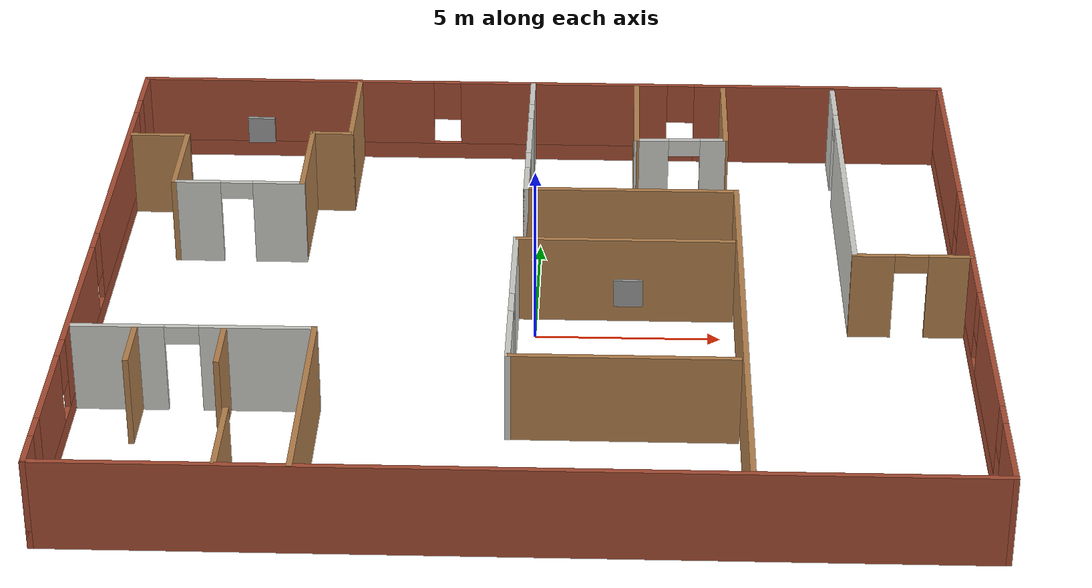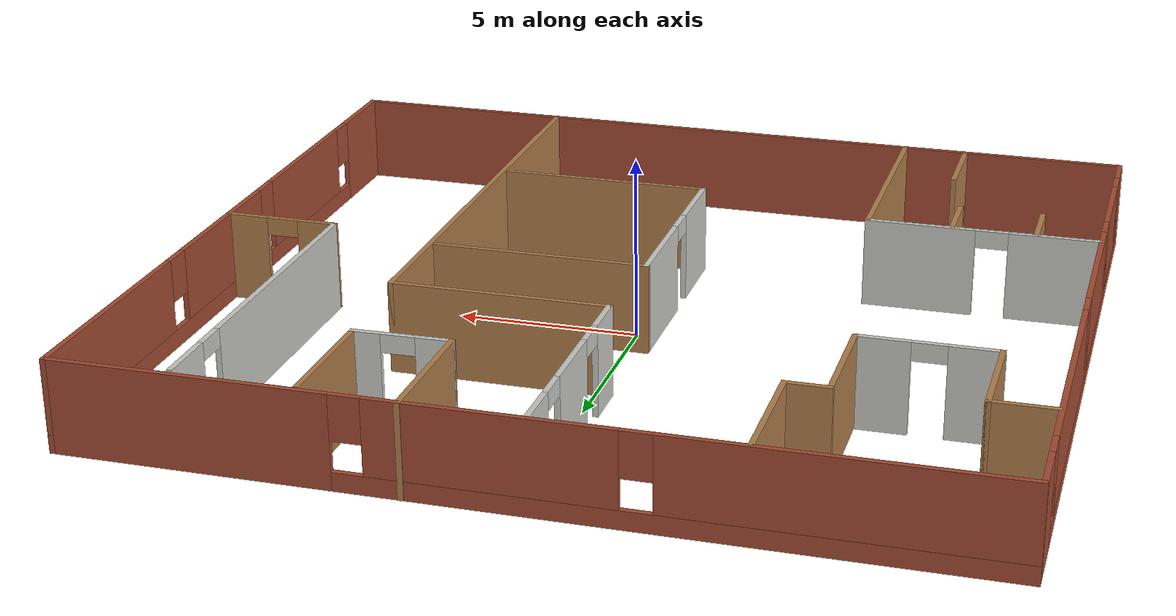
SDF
<?xml version='1.0'?>
<sdf version='1.7'>
  <world name='jetracer_plan'>
    <plugin
    filename="libignition-gazebo-physics-system.so"
    name="ignition::gazebo::systems::Physics">
</plugin>

<plugin
    filename="libignition-gazebo-user-commands-system.so"
    name="ignition::gazebo::systems::UserCommands">
</plugin>

<physics name="1ms" type="ignored">
    <max_step_size>0.001</max_step_size>
    <real_time_factor>1.0</real_time_factor>
</physics>
<plugin
    filename="libignition-gazebo-scene-broadcaster-system.so"
    name="ignition::gazebo::systems::SceneBroadcaster">
</plugin>

<!-- 3D scene -->
<plugin filename="MinimalScene" name="3D View">
  <gz-gui>
    <title>3D View</title>
    <property type="bool" key="showTitleBar">false</property>
    <property type="string" key="state">docked</property>
  </gz-gui>

  <engine>ogre2</engine>
  <scene>scene</scene>
  <ambient_light>0.4 0.4 0.4</ambient_light>
  <background_color>0.8 0.8 0.8</background_color>
  <camera_pose>-6 0 6 0 0.5 0</camera_pose>
  <camera_clip>
    <near>0.25</near>
    <far>25000</far>
  </camera_clip>
</plugin>
<plugin filename="GzSceneManager" name="Scene Manager">
  <gz-gui>
    <property key="resizable" type="bool">false</property>
    <property key="width" type="double">5</property>
    <property key="height" type="double">5</property>
    <property key="state" type="string">floating</property>
    <property key="showTitleBar" type="bool">false</property>
  </gz-gui>
</plugin>
<!-- World control -->
<plugin filename="WorldControl" name="World control">
    <ignition-gui>
        <title>World control</title>
        <property type="bool" key="showTitleBar">false</property>
        <property type="bool" key="resizable">false</property>
        <property type="double" key="height">72</property>
        <property type="double" key="width">121</property>
        <property type="double" key="z">1</property>

        <property type="string" key="state">floating</property>
        <anchors target="3D View">
        <line own="left" target="left"/>
        <line own="bottom" target="bottom"/>
        </anchors>
    </ignition-gui>

    <play_pause>true</play_pause>
    <step>true</step>
    <start_paused>true</start_paused>
    <service>/world/world_demo/control</service>
    <stats_topic>/world/world_demo/stats</stats_topic>
</plugin>

<!-- World statistics -->
<plugin filename="WorldStats" name="World stats">
    <ignition-gui>
        <title>World stats</title>
        <property type="bool" key="showTitleBar">false</property>
        <property type="bool" key="resizable">false</property>
        <property type="double" key="height">110</property>
        <property type="double" key="width">290</property>
        <property type="double" key="z">1</property>

        <property type="string" key="state">floating</property>
        <anchors target="3D View">
        <line own="right" target="right"/>
        <line own="bottom" target="bottom"/>
        </anchors>
    </ignition-gui>

    <sim_time>true</sim_time>
    <real_time>true</real_time>
    <real_time_factor>true</real_time_factor>
    <iterations>true</iterations>
    <topic>/world/world_demo/stats</topic>

</plugin>

  <model name='Walls'>
    <pose>-0.120811 0.11287 0 0 -0 0</pose>
    <link name='Wall_0'>
      <pose>-11.8 -0.006406 0 0 -0 -1.5708</pose>
      <visual name='Wall_0_Visual_0'>
        <pose>-9.71925 0 1.25 0 -0 0</pose>
        <geometry>
          <box>
            <size>1.5615 0.15 2.5</size>
          </box>
        </geometry>
        <material>
          <script>
            <uri>file://media/materials/scripts/gazebo.material</uri>
            <name>Gazebo/Bricks</name>
          </script>
          <ambient>1 1 1 1</ambient>
        </material>
        <meta>
          <layer>0</layer>
        </meta>
      </visual>
      <collision name='Wall_0_Collision_0'>
        <geometry>
          <box>
            <size>1.5615 0.15 2.5</size>
          </box>
        </geometry>
        <pose>-9.71925 0 1.25 0 -0 0</pose>
      </collision>
      <visual name='Wall_0_Visual_1'>
        <pose>0.78075 0 0.25 0 -0 0</pose>
        <geometry>
          <box>
            <size>19.4385 0.15 0.5</size>
          </box>
        </geometry>
        <material>
          <script>
            <uri>file://media/materials/scripts/gazebo.material</uri>
            <name>Gazebo/Bricks</name>
          </script>
          <ambient>1 1 1 1</ambient>
        </material>
        <meta>
          <layer>0</layer>
        </meta>
      </visual>
      <collision name='Wall_0_Collision_1'>
        <geometry>
          <box>
            <size>19.4385 0.15 0.5</size>
          </box>
        </geometry>
        <pose>0.78075 0 0.25 0 -0 0</pose>
      </collision>
      <visual name='Wall_0_Visual_2'>
        <pose>-4.47355 0 1.5 0 -0 0</pose>
        <geometry>
          <box>
            <size>7.32991 0.15 2</size>
          </box>
        </geometry>
        <material>
          <script>
            <uri>file://media/materials/scripts/gazebo.material</uri>
            <name>Gazebo/Bricks</name>
          </script>
          <ambient>1 1 1 1</ambient>
        </material>
        <meta>
          <layer>0</layer>
        </meta>
      </visual>
      <collision name='Wall_0_Collision_2'>
        <geometry>
          <box>
            <size>7.32991 0.15 2</size>
          </box>
        </geometry>
        <pose>-4.47355 0 1.5 0 -0 0</pose>
      </collision>
      <visual name='Wall_0_Visual_3'>
        <pose>2.40606 0 1.5 0 -0 0</pose>
        <geometry>
          <box>
            <size>4.82932 0.15 2</size>
          </box>
        </geometry>
        <material>
          <script>
            <uri>file://media/materials/scripts/gazebo.material</uri>
            <name>Gazebo/Bricks</name>
          </script>
          <ambient>1 1 1 1</ambient>
        </material>
        <meta>
          <layer>0</layer>
        </meta>
      </visual>
      <collision name='Wall_0_Collision_3'>
        <geometry>
          <box>
            <size>4.82932 0.15 2</size>
          </box>
        </geometry>
        <pose>2.40606 0 1.5 0 -0 0</pose>
      </collision>
      <visual name='Wall_0_Visual_4'>
        <pose>7.08238 0 1.5 0 -0 0</pose>
        <geometry>
          <box>
            <size>2.9233 0.15 2</size>
          </box>
        </geometry>
        <material>
          <script>
            <uri>file://media/materials/scripts/gazebo.material</uri>
            <name>Gazebo/Bricks</name>
          </script>
          <ambient>1 1 1 1</ambient>
        </material>
        <meta>
          <layer>0</layer>
        </meta>
      </visual>
      <collision name='Wall_0_Collision_4'>
        <geometry>
          <box>
            <size>2.9233 0.15 2</size>
          </box>
        </geometry>
        <pose>7.08238 0 1.5 0 -0 0</pose>
      </collision>
      <visual name='Wall_0_Visual_5'>
        <pose>9.92202 0 1.5 0 -0 0</pose>
        <geometry>
          <box>
            <size>1.15597 0.15 2</size>
          </box>
        </geometry>
        <material>
          <script>
            <uri>file://media/materials/scripts/gazebo.material</uri>
            <name>Gazebo/Bricks</name>
          </script>
          <ambient>1 1 1 1</ambient>
        </material>
        <meta>
          <layer>0</layer>
        </meta>
      </visual>
      <collision name='Wall_0_Collision_5'>
        <geometry>
          <box>
            <size>1.15597 0.15 2</size>
          </box>
        </geometry>
        <pose>9.92202 0 1.5 0 -0 0</pose>
      </collision>
      <visual name='Wall_0_Visual_6'>
        <pose>-8.5385 0 1.9 0 -0 0</pose>
        <geometry>
          <box>
            <size>0.8 0.15 1.2</size>
          </box>
        </geometry>
        <material>
          <script>
            <uri>file://media/materials/scripts/gazebo.material</uri>
            <name>Gazebo/Bricks</name>
          </script>
          <ambient>1 1 1 1</ambient>
        </material>
        <meta>
          <layer>0</layer>
        </meta>
      </visual>
      <collision name='Wall_0_Collision_6'>
        <geometry>
          <box>
            <size>0.8 0.15 1.2</size>
          </box>
        </geometry>
        <pose>-8.5385 0 1.9 0 -0 0</pose>
      </collision>
      <visual name='Wall_0_Visual_7'>
        <pose>-0.408595 0 1.9 0 -0 0</pose>
        <geometry>
          <box>
            <size>0.8 0.15 1.2</size>
          </box>
        </geometry>
        <material>
          <script>
            <uri>file://media/materials/scripts/gazebo.material</uri>
            <name>Gazebo/Bricks</name>
          </script>
          <ambient>1 1 1 1</ambient>
        </material>
        <meta>
          <layer>0</layer>
        </meta>
      </visual>
      <collision name='Wall_0_Collision_7'>
        <geometry>
          <box>
            <size>0.8 0.15 1.2</size>
          </box>
        </geometry>
        <pose>-0.408595 0 1.9 0 -0 0</pose>
      </collision>
      <visual name='Wall_0_Visual_8'>
        <pose>5.22073 0 1.9 0 -0 0</pose>
        <geometry>
          <box>
            <size>0.8 0.15 1.2</size>
          </box>
        </geometry>
        <material>
          <script>
            <uri>file://media/materials/scripts/gazebo.material</uri>
            <name>Gazebo/Bricks</name>
          </script>
          <ambient>1 1 1 1</ambient>
        </material>
        <meta>
          <layer>0</layer>
        </meta>
      </visual>
      <collision name='Wall_0_Collision_8'>
        <geometry>
          <box>
            <size>0.8 0.15 1.2</size>
          </box>
        </geometry>
        <pose>5.22073 0 1.9 0 -0 0</pose>
      </collision>
      <visual name='Wall_0_Visual_9'>
        <pose>8.94403 0 1.9 0 -0 0</pose>
        <geometry>
          <box>
            <size>0.8 0.15 1.2</size>
          </box>
        </geometry>
        <material>
          <script>
            <uri>file://media/materials/scripts/gazebo.material</uri>
            <name>Gazebo/Bricks</name>
          </script>
          <ambient>1 1 1 1</ambient>
        </material>
        <meta>
          <layer>0</layer>
        </meta>
      </visual>
      <collision name='Wall_0_Collision_9'>
        <geometry>
          <box>
            <size>0.8 0.15 1.2</size>
          </box>
        </geometry>
        <pose>8.94403 0 1.9 0 -0 0</pose>
      </collision>
    </link>
    <link name='Wall_1'>
      <collision name='Wall_1_Collision'>
        <geometry>
          <box>
            <size>23.75 0.15 2.5</size>
          </box>
        </geometry>
        <pose>0 0 1.25 0 -0 0</pose>
      </collision>
      <visual name='Wall_1_Visual'>
        <pose>0 0 1.25 0 -0 0</pose>
        <geometry>
          <box>
            <size>23.75 0.15 2.5</size>
          </box>
        </geometry>
        <material>
          <script>
            <uri>file://media/materials/scripts/gazebo.material</uri>
            <name>Gazebo/Bricks</name>
          </script>
          <ambient>1 1 1 1</ambient>
        </material>
        <meta>
          <layer>0</layer>
        </meta>
      </visual>
      <pose>0 -10.4314 0 0 -0 0</pose>
    </link>
    <link name='Wall_10'>
      <collision name='Wall_10_Collision'>
        <geometry>
          <box>
            <size>1.75 0.15 2.5</size>
          </box>
        </geometry>
        <pose>0 0 1.25 0 -0 0</pose>
      </collision>
      <visual name='Wall_10_Visual'>
        <pose>0 0 1.25 0 -0 0</pose>
        <geometry>
          <box>
            <size>1.75 0.15 2.5</size>
          </box>
        </geometry>
        <material>
          <script>
            <uri>file://media/materials/scripts/gazebo.material</uri>
            <name>Gazebo/Wood</name>
          </script>
          <ambient>1 1 1 1</ambient>
        </material>
        <meta>
          <layer>0</layer>
        </meta>
      </visual>
      <pose>-10.0459 -4.89784 0 0 -0 1.5708</pose>
    </link>
    <link name='Wall_12'>
      <pose>-0.254809 7.05825 0 0 -0 -1.5708</pose>
      <visual name='Wall_12_Visual_0'>
        <pose>-2.66527 0 1.25 0 -0 0</pose>
        <geometry>
          <box>
            <size>1.41945 0.15 2.5</size>
          </box>
        </geometry>
        <material>
          <script>
            <uri>file://media/materials/scripts/gazebo.material</uri>
            <name>Gazebo/CeilingTiled</name>
          </script>
          <ambient>1 1 1 1</ambient>
        </material>
        <meta>
          <layer>0</layer>
        </meta>
      </visual>
      <collision name='Wall_12_Collision_0'>
        <geometry>
          <box>
            <size>1.41945 0.15 2.5</size>
          </box>
        </geometry>
        <pose>-2.66527 0 1.25 0 -0 0</pose>
      </collision>
      <visual name='Wall_12_Visual_1'>
        <pose>0.036887 0 1.25 0 -0 0</pose>
        <geometry>
          <box>
            <size>2.18486 0.15 2.5</size>
          </box>
        </geometry>
        <material>
          <script>
            <uri>file://media/materials/scripts/gazebo.material</uri>
            <name>Gazebo/CeilingTiled</name>
          </script>
          <ambient>1 1 1 1</ambient>
        </material>
        <meta>
          <layer>0</layer>
        </meta>
      </visual>
      <collision name='Wall_12_Collision_1'>
        <geometry>
          <box>
            <size>2.18486 0.15 2.5</size>
          </box>
        </geometry>
        <pose>0.036887 0 1.25 0 -0 0</pose>
      </collision>
      <visual name='Wall_12_Visual_2'>
        <pose>2.70216 0 1.25 0 -0 0</pose>
        <geometry>
          <box>
            <size>1.34568 0.15 2.5</size>
          </box>
        </geometry>
        <material>
          <script>
            <uri>file://media/materials/scripts/gazebo.material</uri>
            <name>Gazebo/CeilingTiled</name>
          </script>
          <ambient>1 1 1 1</ambient>
        </material>
        <meta>
          <layer>0</layer>
        </meta>
      </visual>
      <collision name='Wall_12_Collision_2'>
        <geometry>
          <box>
            <size>1.34568 0.15 2.5</size>
          </box>
        </geometry>
        <pose>2.70216 0 1.25 0 -0 0</pose>
      </collision>
      <visual name='Wall_12_Visual_3'>
        <pose>-1.50555 0 2.25 0 -0 0</pose>
        <geometry>
          <box>
            <size>0.9 0.15 0.5</size>
          </box>
        </geometry>
        <material>
          <script>
            <uri>file://media/materials/scripts/gazebo.material</uri>
            <name>Gazebo/CeilingTiled</name>
          </script>
          <ambient>1 1 1 1</ambient>
        </material>
        <meta>
          <layer>0</layer>
        </meta>
      </visual>
      <collision name='Wall_12_Collision_3'>
        <geometry>
          <box>
            <size>0.9 0.15 0.5</size>
          </box>
        </geometry>
        <pose>-1.50555 0 2.25 0 -0 0</pose>
      </collision>
      <visual name='Wall_12_Visual_4'>
        <pose>1.57932 0 2.25 0 -0 0</pose>
        <geometry>
          <box>
            <size>0.9 0.15 0.5</size>
          </box>
        </geometry>
        <material>
          <script>
            <uri>file://media/materials/scripts/gazebo.material</uri>
            <name>Gazebo/CeilingTiled</name>
          </script>
          <ambient>1 1 1 1</ambient>
        </material>
        <meta>
          <layer>0</layer>
        </meta>
      </visual>
      <collision name='Wall_12_Collision_4'>
        <geometry>
          <box>
            <size>0.9 0.15 0.5</size>
          </box>
        </geometry>
        <pose>1.57932 0 2.25 0 -0 0</pose>
      </collision>
    </link>
    <link name='Wall_13'>
      <collision name='Wall_13_Collision'>
        <geometry>
          <box>
            <size>6 0.15 2.5</size>
          </box>
        </geometry>
        <pose>0 0 1.25 0 -0 0</pose>
      </collision>
      <visual name='Wall_13_Visual'>
        <pose>0 0 1.25 0 -0 0</pose>
        <geometry>
          <box>
            <size>6 0.15 2.5</size>
          </box>
        </geometry>
        <material>
          <script>
            <uri>file://media/materials/scripts/gazebo.material</uri>
            <name>Gazebo/Wood</name>
          </script>
          <ambient>1 1 1 1</ambient>
        </material>
        <meta>
          <layer>0</layer>
        </meta>
      </visual>
      <pose>2.67019 3.75825 0 0 -0 0</pose>
    </link>
    <link name='Wall_14'>
      <collision name='Wall_14_Collision'>
        <geometry>
          <box>
            <size>14.25 0.15 2.5</size>
          </box>
        </geometry>
        <pose>0 0 1.25 0 -0 0</pose>
      </collision>
      <visual name='Wall_14_Visual'>
        <pose>0 0 1.25 0 -0 0</pose>
        <geometry>
          <box>
            <size>14.25 0.15 2.5</size>
          </box>
        </geometry>
        <material>
          <script>
            <uri>file://media/materials/scripts/gazebo.material</uri>
            <name>Gazebo/Wood</name>
          </script>
          <ambient>1 1 1 1</ambient>
        </material>
        <meta>
          <layer>0</layer>
        </meta>
      </visual>
      <pose>5.59519 -3.29175 0 0 -0 -1.5708</pose>
    </link>
    <link name='Wall_16'>
      <collision name='Wall_16_Collision'>
        <geometry>
          <box>
            <size>6 0.15 2.5</size>
          </box>
        </geometry>
        <pose>0 0 1.25 0 -0 0</pose>
      </collision>
      <visual name='Wall_16_Visual'>
        <pose>0 0 1.25 0 -0 0</pose>
        <geometry>
          <box>
            <size>6 0.15 2.5</size>
          </box>
        </geometry>
        <material>
          <script>
            <uri>file://media/materials/scripts/gazebo.material</uri>
            <name>Gazebo/Wood</name>
          </script>
          <ambient>1 1 1 1</ambient>
        </material>
        <meta>
          <layer>0</layer>
        </meta>
      </visual>
      <pose>2.49222 0.884761 0 0 -0 3.14159</pose>
    </link>
    <link name='Wall_17'>
      <pose>-0.432782 -2.16524 0 0 -0 -1.5708</pose>
      <visual name='Wall_17_Visual_0'>
        <pose>-1.59353 0 1.25 0 -0 0</pose>
        <geometry>
          <box>
            <size>3.06293 0.15 2.5</size>
          </box>
        </geometry>
        <material>
          <script>
            <uri>file://media/materials/scripts/gazebo.material</uri>
            <name>Gazebo/CeilingTiled</name>
          </script>
          <ambient>1 1 1 1</ambient>
        </material>
        <meta>
          <layer>0</layer>
        </meta>
      </visual>
      <collision name='Wall_17_Collision_0'>
        <geometry>
          <box>
            <size>3.06293 0.15 2.5</size>
          </box>
        </geometry>
        <pose>-1.59353 0 1.25 0 -0 0</pose>
      </collision>
      <visual name='Wall_17_Visual_1'>
        <pose>1.98147 0 1.25 0 -0 0</pose>
        <geometry>
          <box>
            <size>2.28707 0.15 2.5</size>
          </box>
        </geometry>
        <material>
          <script>
            <uri>file://media/materials/scripts/gazebo.material</uri>
            <name>Gazebo/CeilingTiled</name>
          </script>
          <ambient>1 1 1 1</ambient>
        </material>
        <meta>
          <layer>0</layer>
        </meta>
      </visual>
      <collision name='Wall_17_Collision_1'>
        <geometry>
          <box>
            <size>2.28707 0.15 2.5</size>
          </box>
        </geometry>
        <pose>1.98147 0 1.25 0 -0 0</pose>
      </collision>
      <visual name='Wall_17_Visual_2'>
        <pose>0.387932 0 2.25 0 -0 0</pose>
        <geometry>
          <box>
            <size>0.9 0.15 0.5</size>
          </box>
        </geometry>
        <material>
          <script>
            <uri>file://media/materials/scripts/gazebo.material</uri>
            <name>Gazebo/CeilingTiled</name>
          </script>
          <ambient>1 1 1 1</ambient>
        </material>
        <meta>
          <layer>0</layer>
        </meta>
      </visual>
      <collision name='Wall_17_Collision_2'>
        <geometry>
          <box>
            <size>0.9 0.15 0.5</size>
          </box>
        </geometry>
        <pose>0.387932 0 2.25 0 -0 0</pose>
      </collision>
    </link>
    <link name='Wall_18'>
      <collision name='Wall_18_Collision'>
        <geometry>
          <box>
            <size>6 0.15 2.5</size>
          </box>
        </geometry>
        <pose>0 0 1.25 0 -0 0</pose>
      </collision>
      <visual name='Wall_18_Visual'>
        <pose>0 0 1.25 0 -0 0</pose>
        <geometry>
          <box>
            <size>6 0.15 2.5</size>
          </box>
        </geometry>
        <material>
          <script>
            <uri>file://media/materials/scripts/gazebo.material</uri>
            <name>Gazebo/Wood</name>
          </script>
          <ambient>1 1 1 1</ambient>
        </material>
        <meta>
          <layer>0</layer>
        </meta>
      </visual>
      <pose>2.49222 -5.21524 0 0 -0 0</pose>
    </link>
    <link name='Wall_2'>
      <pose>11.8 -0.006406 0 0 -0 1.5708</pose>
      <visual name='Wall_2_Visual_0'>
        <pose>-9.27157 0 1.25 0 -0 0</pose>
        <geometry>
          <box>
            <size>2.45686 0.15 2.5</size>
          </box>
        </geometry>
        <material>
          <script>
            <uri>file://media/materials/scripts/gazebo.material</uri>
            <name>Gazebo/Bricks</name>
          </script>
          <ambient>1 1 1 1</ambient>
        </material>
        <meta>
          <layer>0</layer>
        </meta>
      </visual>
      <collision name='Wall_2_Collision_0'>
        <geometry>
          <box>
            <size>2.45686 0.15 2.5</size>
          </box>
        </geometry>
        <pose>-9.27157 0 1.25 0 -0 0</pose>
      </collision>
      <visual name='Wall_2_Visual_1'>
        <pose>1.22843 0 0.25 0 -0 0</pose>
        <geometry>
          <box>
            <size>18.5431 0.15 0.5</size>
          </box>
        </geometry>
        <material>
          <script>
            <uri>file://media/materials/scripts/gazebo.material</uri>
            <name>Gazebo/Bricks</name>
          </script>
          <ambient>1 1 1 1</ambient>
        </material>
        <meta>
          <layer>0</layer>
        </meta>
      </visual>
      <collision name='Wall_2_Collision_1'>
        <geometry>
          <box>
            <size>18.5431 0.15 0.5</size>
          </box>
        </geometry>
        <pose>1.22843 0 0.25 0 -0 0</pose>
      </collision>
      <visual name='Wall_2_Visual_2'>
        <pose>-4.85239 0 1.5 0 -0 0</pose>
        <geometry>
          <box>
            <size>4.78149 0.15 2</size>
          </box>
        </geometry>
        <material>
          <script>
            <uri>file://media/materials/scripts/gazebo.material</uri>
            <name>Gazebo/Bricks</name>
          </script>
          <ambient>1 1 1 1</ambient>
        </material>
        <meta>
          <layer>0</layer>
        </meta>
      </visual>
      <collision name='Wall_2_Collision_2'>
        <geometry>
          <box>
            <size>4.78149 0.15 2</size>
          </box>
        </geometry>
        <pose>-4.85239 0 1.5 0 -0 0</pose>
      </collision>
      <visual name='Wall_2_Visual_3'>
        <pose>0.752553 0 1.5 0 -0 0</pose>
        <geometry>
          <box>
            <size>4.8284 0.15 2</size>
          </box>
        </geometry>
        <material>
          <script>
            <uri>file://media/materials/scripts/gazebo.material</uri>
            <name>Gazebo/Bricks</name>
          </script>
          <ambient>1 1 1 1</ambient>
        </material>
        <meta>
          <layer>0</layer>
        </meta>
      </visual>
      <collision name='Wall_2_Collision_3'>
        <geometry>
          <box>
            <size>4.8284 0.15 2</size>
          </box>
        </geometry>
        <pose>0.752553 0 1.5 0 -0 0</pose>
      </collision>
      <visual name='Wall_2_Visual_4'>
        <pose>7.23337 0 1.5 0 -0 0</pose>
        <geometry>
          <box>
            <size>6.53325 0.15 2</size>
          </box>
        </geometry>
        <material>
          <script>
            <uri>file://media/materials/scripts/gazebo.material</uri>
            <name>Gazebo/Bricks</name>
          </script>
          <ambient>1 1 1 1</ambient>
        </material>
        <meta>
          <layer>0</layer>
        </meta>
      </visual>
      <collision name='Wall_2_Collision_4'>
        <geometry>
          <box>
            <size>6.53325 0.15 2</size>
          </box>
        </geometry>
        <pose>7.23337 0 1.5 0 -0 0</pose>
      </collision>
      <visual name='Wall_2_Visual_5'>
        <pose>-7.64314 0 1.9 0 -0 0</pose>
        <geometry>
          <box>
            <size>0.8 0.15 1.2</size>
          </box>
        </geometry>
        <material>
          <script>
            <uri>file://media/materials/scripts/gazebo.material</uri>
            <name>Gazebo/Bricks</name>
          </script>
          <ambient>1 1 1 1</ambient>
        </material>
        <meta>
          <layer>0</layer>
        </meta>
      </visual>
      <collision name='Wall_2_Collision_5'>
        <geometry>
          <box>
            <size>0.8 0.15 1.2</size>
          </box>
        </geometry>
        <pose>-7.64314 0 1.9 0 -0 0</pose>
      </collision>
      <visual name='Wall_2_Visual_6'>
        <pose>-2.06164 0 1.9 0 -0 0</pose>
        <geometry>
          <box>
            <size>0.8 0.15 1.2</size>
          </box>
        </geometry>
        <material>
          <script>
            <uri>file://media/materials/scripts/gazebo.material</uri>
            <name>Gazebo/Bricks</name>
          </script>
          <ambient>1 1 1 1</ambient>
        </material>
        <meta>
          <layer>0</layer>
        </meta>
      </visual>
      <collision name='Wall_2_Collision_6'>
        <geometry>
          <box>
            <size>0.8 0.15 1.2</size>
          </box>
        </geometry>
        <pose>-2.06164 0 1.9 0 -0 0</pose>
      </collision>
      <visual name='Wall_2_Visual_7'>
        <pose>3.56675 0 1.9 0 -0 0</pose>
        <geometry>
          <box>
            <size>0.8 0.15 1.2</size>
          </box>
        </geometry>
        <material>
          <script>
            <uri>file://media/materials/scripts/gazebo.material</uri>
            <name>Gazebo/Bricks</name>
          </script>
          <ambient>1 1 1 1</ambient>
        </material>
        <meta>
          <layer>0</layer>
        </meta>
      </visual>
      <collision name='Wall_2_Collision_7'>
        <geometry>
          <box>
            <size>0.8 0.15 1.2</size>
          </box>
        </geometry>
        <pose>3.56675 0 1.9 0 -0 0</pose>
      </collision>
    </link>
    <link name='Wall_20'>
      <collision name='Wall_20_Collision'>
        <geometry>
          <box>
            <size>3.5 0.15 2.5</size>
          </box>
        </geometry>
        <pose>0 0 1.25 0 -0 0</pose>
      </collision>
      <visual name='Wall_20_Visual'>
        <pose>0 0 1.25 0 -0 0</pose>
        <geometry>
          <box>
            <size>3.5 0.15 2.5</size>
          </box>
        </geometry>
        <material>
          <script>
            <uri>file://media/materials/scripts/gazebo.material</uri>
            <name>Gazebo/Wood</name>
          </script>
          <ambient>1 1 1 1</ambient>
        </material>
        <meta>
          <layer>0</layer>
        </meta>
      </visual>
      <pose>-5.424 8.66314 0 0 -0 -1.5708</pose>
    </link>
    <link name='Wall_22'>
      <collision name='Wall_22_Collision'>
        <geometry>
          <box>
            <size>1.25 0.15 2.5</size>
          </box>
        </geometry>
        <pose>0 0 1.25 0 -0 0</pose>
      </collision>
      <visual name='Wall_22_Visual'>
        <pose>0 0 1.25 0 -0 0</pose>
        <geometry>
          <box>
            <size>1.25 0.15 2.5</size>
          </box>
        </geometry>
        <material>
          <script>
            <uri>file://media/materials/scripts/gazebo.material</uri>
            <name>Gazebo/Wood</name>
          </script>
          <ambient>1 1 1 1</ambient>
        </material>
        <meta>
          <layer>0</layer>
        </meta>
      </visual>
      <pose>-5.974 6.98814 0 0 -0 3.14159</pose>
    </link>
    <link name='Wall_23'>
      <collision name='Wall_23_Collision'>
        <geometry>
          <box>
            <size>3.25 0.15 2.5</size>
          </box>
        </geometry>
        <pose>0 0 1.25 0 -0 0</pose>
      </collision>
      <visual name='Wall_23_Visual'>
        <pose>0 0 1.25 0 -0 0</pose>
        <geometry>
          <box>
            <size>3.25 0.15 2.5</size>
          </box>
        </geometry>
        <material>
          <script>
            <uri>file://media/materials/scripts/gazebo.material</uri>
            <name>Gazebo/Wood</name>
          </script>
          <ambient>1 1 1 1</ambient>
        </material>
        <meta>
          <layer>0</layer>
        </meta>
      </visual>
      <pose>-6.524 5.43814 0 0 -0 -1.5708</pose>
    </link>
    <link name='Wall_24'>
      <pose>-8.324 3.88814 0 0 -0 3.14159</pose>
      <visual name='Wall_24_Visual_0'>
        <pose>-1.14284 0 1.25 0 -0 0</pose>
        <geometry>
          <box>
            <size>1.46433 0.15 2.5</size>
          </box>
        </geometry>
        <material>
          <script>
            <uri>file://media/materials/scripts/gazebo.material</uri>
            <name>Gazebo/CeilingTiled</name>
          </script>
          <ambient>1 1 1 1</ambient>
        </material>
        <meta>
          <layer>0</layer>
        </meta>
      </visual>
      <collision name='Wall_24_Collision_0'>
        <geometry>
          <box>
            <size>1.46433 0.15 2.5</size>
          </box>
        </geometry>
        <pose>-1.14284 0 1.25 0 -0 0</pose>
      </collision>
      <visual name='Wall_24_Visual_1'>
        <pose>1.18216 0 1.25 0 -0 0</pose>
        <geometry>
          <box>
            <size>1.38567 0.15 2.5</size>
          </box>
        </geometry>
        <material>
          <script>
            <uri>file://media/materials/scripts/gazebo.material</uri>
            <name>Gazebo/CeilingTiled</name>
          </script>
          <ambient>1 1 1 1</ambient>
        </material>
        <meta>
          <layer>0</layer>
        </meta>
      </visual>
      <collision name='Wall_24_Collision_1'>
        <geometry>
          <box>
            <size>1.38567 0.15 2.5</size>
          </box>
        </geometry>
        <pose>1.18216 0 1.25 0 -0 0</pose>
      </collision>
      <visual name='Wall_24_Visual_2'>
        <pose>0.039327 0 2.25 0 -0 0</pose>
        <geometry>
          <box>
            <size>0.9 0.15 0.5</size>
          </box>
        </geometry>
        <material>
          <script>
            <uri>file://media/materials/scripts/gazebo.material</uri>
            <name>Gazebo/CeilingTiled</name>
          </script>
          <ambient>1 1 1 1</ambient>
        </material>
        <meta>
          <layer>0</layer>
        </meta>
      </visual>
      <collision name='Wall_24_Collision_2'>
        <geometry>
          <box>
            <size>0.9 0.15 0.5</size>
          </box>
        </geometry>
        <pose>0.039327 0 2.25 0 -0 0</pose>
      </collision>
    </link>
    <link name='Wall_25'>
      <collision name='Wall_25_Collision'>
        <geometry>
          <box>
            <size>3 0.15 2.5</size>
          </box>
        </geometry>
        <pose>0 0 1.25 0 -0 0</pose>
      </collision>
      <visual name='Wall_25_Visual'>
        <pose>0 0 1.25 0 -0 0</pose>
        <geometry>
          <box>
            <size>3 0.15 2.5</size>
          </box>
        </geometry>
        <material>
          <script>
            <uri>file://media/materials/scripts/gazebo.material</uri>
            <name>Gazebo/Wood</name>
          </script>
          <ambient>1 1 1 1</ambient>
        </material>
        <meta>
          <layer>0</layer>
        </meta>
      </visual>
      <pose>-10.124 5.31314 0 0 -0 1.5708</pose>
    </link>
    <link name='Wall_26'>
      <collision name='Wall_26_Collision'>
        <geometry>
          <box>
            <size>1.75 0.15 2.5</size>
          </box>
        </geometry>
        <pose>0 0 1.25 0 -0 0</pose>
      </collision>
      <visual name='Wall_26_Visual'>
        <pose>0 0 1.25 0 -0 0</pose>
        <geometry>
          <box>
            <size>1.75 0.15 2.5</size>
          </box>
        </geometry>
        <material>
          <script>
            <uri>file://media/materials/scripts/gazebo.material</uri>
            <name>Gazebo/Wood</name>
          </script>
          <ambient>1 1 1 1</ambient>
        </material>
        <meta>
          <layer>0</layer>
        </meta>
      </visual>
      <pose>-10.924 6.73814 0 0 -0 3.14159</pose>
    </link>
    <link name='Wall_28'>
      <collision name='Wall_28_Collision'>
        <geometry>
          <box>
            <size>2.5 0.15 2.5</size>
          </box>
        </geometry>
        <pose>0 0 1.25 0 -0 0</pose>
      </collision>
      <visual name='Wall_28_Visual'>
        <pose>0 0 1.25 0 -0 0</pose>
        <geometry>
          <box>
            <size>2.5 0.15 2.5</size>
          </box>
        </geometry>
        <material>
          <script>
            <uri>file://media/materials/scripts/gazebo.material</uri>
            <name>Gazebo/Wood</name>
          </script>
          <ambient>1 1 1 1</ambient>
        </material>
        <meta>
          <layer>0</layer>
        </meta>
      </visual>
      <pose>-7.24314 -9.15893 0 0 -0 -1.5708</pose>
    </link>
    <link name='Wall_3'>
      <pose>0 10.4186 0 0 -0 3.14159</pose>
      <visual name='Wall_3_Visual_0'>
        <pose>-8.20375 0 1.25 0 -0 0</pose>
        <geometry>
          <box>
            <size>7.3425 0.15 2.5</size>
          </box>
        </geometry>
        <material>
          <script>
            <uri>file://media/materials/scripts/gazebo.material</uri>
            <name>Gazebo/Bricks</name>
          </script>
          <ambient>1 1 1 1</ambient>
        </material>
        <meta>
          <layer>0</layer>
        </meta>
      </visual>
      <collision name='Wall_3_Collision_0'>
        <geometry>
          <box>
            <size>7.3425 0.15 2.5</size>
          </box>
        </geometry>
        <pose>-8.20375 0 1.25 0 -0 0</pose>
      </collision>
      <visual name='Wall_3_Visual_1'>
        <pose>3.67125 0 0.25 0 -0 0</pose>
        <geometry>
          <box>
            <size>16.4075 0.15 0.5</size>
          </box>
        </geometry>
        <material>
          <script>
            <uri>file://media/materials/scripts/gazebo.material</uri>
            <name>Gazebo/Bricks</name>
          </script>
          <ambient>1 1 1 1</ambient>
        </material>
        <meta>
          <layer>0</layer>
        </meta>
      </visual>
      <collision name='Wall_3_Collision_1'>
        <geometry>
          <box>
            <size>16.4075 0.15 0.5</size>
          </box>
        </geometry>
        <pose>3.67125 0 0.25 0 -0 0</pose>
      </collision>
      <visual name='Wall_3_Visual_2'>
        <pose>-0.65384 0 1.5 0 -0 0</pose>
        <geometry>
          <box>
            <size>6.15732 0.15 2</size>
          </box>
        </geometry>
        <material>
          <script>
            <uri>file://media/materials/scripts/gazebo.material</uri>
            <name>Gazebo/Bricks</name>
          </script>
          <ambient>1 1 1 1</ambient>
        </material>
        <meta>
          <layer>0</layer>
        </meta>
      </visual>
      <collision name='Wall_3_Collision_2'>
        <geometry>
          <box>
            <size>6.15732 0.15 2</size>
          </box>
        </geometry>
        <pose>-0.65384 0 1.5 0 -0 0</pose>
      </collision>
      <visual name='Wall_3_Visual_3'>
        <pose>7.54991 0 1.5 0 -0 0</pose>
        <geometry>
          <box>
            <size>8.65018 0.15 2</size>
          </box>
        </geometry>
        <material>
          <script>
            <uri>file://media/materials/scripts/gazebo.material</uri>
            <name>Gazebo/Bricks</name>
          </script>
          <ambient>1 1 1 1</ambient>
        </material>
        <meta>
          <layer>0</layer>
        </meta>
      </visual>
      <collision name='Wall_3_Collision_3'>
        <geometry>
          <box>
            <size>8.65018 0.15 2</size>
          </box>
        </geometry>
        <pose>7.54991 0 1.5 0 -0 0</pose>
      </collision>
      <visual name='Wall_3_Visual_4'>
        <pose>-4.1325 0 1.9 0 -0 0</pose>
        <geometry>
          <box>
            <size>0.8 0.15 1.2</size>
          </box>
        </geometry>
        <material>
          <script>
            <uri>file://media/materials/scripts/gazebo.material</uri>
            <name>Gazebo/Bricks</name>
          </script>
          <ambient>1 1 1 1</ambient>
        </material>
        <meta>
          <layer>0</layer>
        </meta>
      </visual>
      <collision name='Wall_3_Collision_4'>
        <geometry>
          <box>
            <size>0.8 0.15 1.2</size>
          </box>
        </geometry>
        <pose>-4.1325 0 1.9 0 -0 0</pose>
      </collision>
      <visual name='Wall_3_Visual_5'>
        <pose>2.82482 0 1.9 0 -0 0</pose>
        <geometry>
          <box>
            <size>0.8 0.15 1.2</size>
          </box>
        </geometry>
        <material>
          <script>
            <uri>file://media/materials/scripts/gazebo.material</uri>
            <name>Gazebo/Bricks</name>
          </script>
          <ambient>1 1 1 1</ambient>
        </material>
        <meta>
          <layer>0</layer>
        </meta>
      </visual>
      <collision name='Wall_3_Collision_5'>
        <geometry>
          <box>
            <size>0.8 0.15 1.2</size>
          </box>
        </geometry>
        <pose>2.82482 0 1.9 0 -0 0</pose>
      </collision>
    </link>
    <link name='Wall_30'>
      <collision name='Wall_30_Collision'>
        <geometry>
          <box>
            <size>3.75 0.15 2.5</size>
          </box>
        </geometry>
        <pose>0 0 1.25 0 -0 0</pose>
      </collision>
      <visual name='Wall_30_Visual'>
        <pose>0 0 1.25 0 -0 0</pose>
        <geometry>
          <box>
            <size>3.75 0.15 2.5</size>
          </box>
        </geometry>
        <material>
          <script>
            <uri>file://media/materials/scripts/gazebo.material</uri>
            <name>Gazebo/Wood</name>
          </script>
          <ambient>1 1 1 1</ambient>
        </material>
        <meta>
          <layer>0</layer>
        </meta>
      </visual>
      <pose>2.81911 8.63141 0 0 -0 -1.5708</pose>
    </link>
    <link name='Wall_31'>
      <pose>4.09949 6.86083 0 0 -0 0.022974</pose>
      <visual name='Wall_31_Visual_0'>
        <pose>-0.858041 0 1.25 0 -0 0</pose>
        <geometry>
          <box>
            <size>0.995366 0.15 2.5</size>
          </box>
        </geometry>
        <material>
          <script>
            <uri>file://media/materials/scripts/gazebo.material</uri>
            <name>Gazebo/CeilingTiled</name>
          </script>
          <ambient>1 1 1 1</ambient>
        </material>
        <meta>
          <layer>0</layer>
        </meta>
      </visual>
      <collision name='Wall_31_Collision_0'>
        <geometry>
          <box>
            <size>0.995366 0.15 2.5</size>
          </box>
        </geometry>
        <pose>-0.858041 0 1.25 0 -0 0</pose>
      </collision>
      <visual name='Wall_31_Visual_1'>
        <pose>0.947683 0 1.25 0 -0 0</pose>
        <geometry>
          <box>
            <size>0.816082 0.15 2.5</size>
          </box>
        </geometry>
        <material>
          <script>
            <uri>file://media/materials/scripts/gazebo.material</uri>
            <name>Gazebo/CeilingTiled</name>
          </script>
          <ambient>1 1 1 1</ambient>
        </material>
        <meta>
          <layer>0</layer>
        </meta>
      </visual>
      <collision name='Wall_31_Collision_1'>
        <geometry>
          <box>
            <size>0.816082 0.15 2.5</size>
          </box>
        </geometry>
        <pose>0.947683 0 1.25 0 -0 0</pose>
      </collision>
      <visual name='Wall_31_Visual_2'>
        <pose>0.089642 0 2.25 0 -0 0</pose>
        <geometry>
          <box>
            <size>0.9 0.15 0.5</size>
          </box>
        </geometry>
        <material>
          <script>
            <uri>file://media/materials/scripts/gazebo.material</uri>
            <name>Gazebo/CeilingTiled</name>
          </script>
          <ambient>1 1 1 1</ambient>
        </material>
        <meta>
          <layer>0</layer>
        </meta>
      </visual>
      <collision name='Wall_31_Collision_2'>
        <geometry>
          <box>
            <size>0.9 0.15 0.5</size>
          </box>
        </geometry>
        <pose>0.089642 0 2.25 0 -0 0</pose>
      </collision>
    </link>
    <link name='Wall_32'>
      <collision name='Wall_32_Collision'>
        <geometry>
          <box>
            <size>3.5 0.15 2.5</size>
          </box>
        </geometry>
        <pose>0 0 1.25 0 -0 0</pose>
      </collision>
      <visual name='Wall_32_Visual'>
        <pose>0 0 1.25 0 -0 0</pose>
        <geometry>
          <box>
            <size>3.5 0.15 2.5</size>
          </box>
        </geometry>
        <material>
          <script>
            <uri>file://media/materials/scripts/gazebo.material</uri>
            <name>Gazebo/Wood</name>
          </script>
          <ambient>1 1 1 1</ambient>
        </material>
        <meta>
          <layer>0</layer>
        </meta>
      </visual>
      <pose>5.37988 8.56525 0 0 -0 1.5708</pose>
    </link>
    <link name='Wall_34'>
      <pose>10.2063 0.230365 0 0 -0 3.14159</pose>
      <visual name='Wall_34_Visual_0'>
        <pose>-1.02534 0 1.25 0 -0 0</pose>
        <geometry>
          <box>
            <size>1.19932 0.15 2.5</size>
          </box>
        </geometry>
        <material>
          <script>
            <uri>file://media/materials/scripts/gazebo.material</uri>
            <name>Gazebo/Wood</name>
          </script>
          <ambient>1 1 1 1</ambient>
        </material>
        <meta>
          <layer>0</layer>
        </meta>
      </visual>
      <collision name='Wall_34_Collision_0'>
        <geometry>
          <box>
            <size>1.19932 0.15 2.5</size>
          </box>
        </geometry>
        <pose>-1.02534 0 1.25 0 -0 0</pose>
      </collision>
      <visual name='Wall_34_Visual_1'>
        <pose>1.04966 0 1.25 0 -0 0</pose>
        <geometry>
          <box>
            <size>1.15068 0.15 2.5</size>
          </box>
        </geometry>
        <material>
          <script>
            <uri>file://media/materials/scripts/gazebo.material</uri>
            <name>Gazebo/Wood</name>
          </script>
          <ambient>1 1 1 1</ambient>
        </material>
        <meta>
          <layer>0</layer>
        </meta>
      </visual>
      <collision name='Wall_34_Collision_1'>
        <geometry>
          <box>
            <size>1.15068 0.15 2.5</size>
          </box>
        </geometry>
        <pose>1.04966 0 1.25 0 -0 0</pose>
      </collision>
      <visual name='Wall_34_Visual_2'>
        <pose>0.02432 0 2.25 0 -0 0</pose>
        <geometry>
          <box>
            <size>0.9 0.15 0.5</size>
          </box>
        </geometry>
        <material>
          <script>
            <uri>file://media/materials/scripts/gazebo.material</uri>
            <name>Gazebo/Wood</name>
          </script>
          <ambient>1 1 1 1</ambient>
        </material>
        <meta>
          <layer>0</layer>
        </meta>
      </visual>
      <collision name='Wall_34_Collision_2'>
        <geometry>
          <box>
            <size>0.9 0.15 0.5</size>
          </box>
        </geometry>
        <pose>0.02432 0 2.25 0 -0 0</pose>
      </collision>
    </link>
    <link name='Wall_35'>
      <pose>8.6367 5.20287 0 0 -0 1.57476</pose>
      <visual name='Wall_35_Visual_0'>
        <pose>-1.27333 0 1.25 0 -0 0</pose>
        <geometry>
          <box>
            <size>7.50919 0.15 2.5</size>
          </box>
        </geometry>
        <material>
          <script>
            <uri>file://media/materials/scripts/gazebo.material</uri>
            <name>Gazebo/CeilingTiled</name>
          </script>
          <ambient>1 1 1 1</ambient>
        </material>
        <meta>
          <layer>0</layer>
        </meta>
      </visual>
      <collision name='Wall_35_Collision_0'>
        <geometry>
          <box>
            <size>7.50919 0.15 2.5</size>
          </box>
        </geometry>
        <pose>-1.27333 0 1.25 0 -0 0</pose>
      </collision>
      <visual name='Wall_35_Visual_1'>
        <pose>4.2046 0 1.25 0 -0 0</pose>
        <geometry>
          <box>
            <size>1.64666 0.15 2.5</size>
          </box>
        </geometry>
        <material>
          <script>
            <uri>file://media/materials/scripts/gazebo.material</uri>
            <name>Gazebo/CeilingTiled</name>
          </script>
          <ambient>1 1 1 1</ambient>
        </material>
        <meta>
          <layer>0</layer>
        </meta>
      </visual>
      <collision name='Wall_35_Collision_1'>
        <geometry>
          <box>
            <size>1.64666 0.15 2.5</size>
          </box>
        </geometry>
        <pose>4.2046 0 1.25 0 -0 0</pose>
      </collision>
      <visual name='Wall_35_Visual_2'>
        <pose>2.93127 0 2.25 0 -0 0</pose>
        <geometry>
          <box>
            <size>0.9 0.15 0.5</size>
          </box>
        </geometry>
        <material>
          <script>
            <uri>file://media/materials/scripts/gazebo.material</uri>
            <name>Gazebo/CeilingTiled</name>
          </script>
          <ambient>1 1 1 1</ambient>
        </material>
        <meta>
          <layer>0</layer>
        </meta>
      </visual>
      <collision name='Wall_35_Collision_2'>
        <geometry>
          <box>
            <size>0.9 0.15 0.5</size>
          </box>
        </geometry>
        <pose>2.93127 0 2.25 0 -0 0</pose>
      </collision>
    </link>
    <link name='Wall_5'>
      <pose>-8.60489 -4.05021 0 0 -0 0.004085</pose>
      <visual name='Wall_5_Visual_0'>
        <pose>-1.97391 0 1.25 0 -0 0</pose>
        <geometry>
          <box>
            <size>2.55217 0.15 2.5</size>
          </box>
        </geometry>
        <material>
          <script>
            <uri>file://media/materials/scripts/gazebo.material</uri>
            <name>Gazebo/CeilingTiled</name>
          </script>
          <ambient>1 1 1 1</ambient>
        </material>
        <meta>
          <layer>0</layer>
        </meta>
      </visual>
      <collision name='Wall_5_Collision_0'>
        <geometry>
          <box>
            <size>2.55217 0.15 2.5</size>
          </box>
        </geometry>
        <pose>-1.97391 0 1.25 0 -0 0</pose>
      </collision>
      <visual name='Wall_5_Visual_1'>
        <pose>1.72609 0 1.25 0 -0 0</pose>
        <geometry>
          <box>
            <size>3.04783 0.15 2.5</size>
          </box>
        </geometry>
        <material>
          <script>
            <uri>file://media/materials/scripts/gazebo.material</uri>
            <name>Gazebo/CeilingTiled</name>
          </script>
          <ambient>1 1 1 1</ambient>
        </material>
        <meta>
          <layer>0</layer>
        </meta>
      </visual>
      <collision name='Wall_5_Collision_1'>
        <geometry>
          <box>
            <size>3.04783 0.15 2.5</size>
          </box>
        </geometry>
        <pose>1.72609 0 1.25 0 -0 0</pose>
      </collision>
      <visual name='Wall_5_Visual_2'>
        <pose>-0.247828 0 2.25 0 -0 0</pose>
        <geometry>
          <box>
            <size>0.9 0.15 0.5</size>
          </box>
        </geometry>
        <material>
          <script>
            <uri>file://media/materials/scripts/gazebo.material</uri>
            <name>Gazebo/CeilingTiled</name>
          </script>
          <ambient>1 1 1 1</ambient>
        </material>
        <meta>
          <layer>0</layer>
        </meta>
      </visual>
      <collision name='Wall_5_Collision_2'>
        <geometry>
          <box>
            <size>0.9 0.15 0.5</size>
          </box>
        </geometry>
        <pose>-0.247828 0 2.25 0 -0 0</pose>
      </collision>
    </link>
    <link name='Wall_6'>
      <collision name='Wall_6_Collision'>
        <geometry>
          <box>
            <size>6.5 0.15 2.5</size>
          </box>
        </geometry>
        <pose>0 0 1.25 0 -0 0</pose>
      </collision>
      <visual name='Wall_6_Visual'>
        <pose>0 0 1.25 0 -0 0</pose>
        <geometry>
          <box>
            <size>6.5 0.15 2.5</size>
          </box>
        </geometry>
        <material>
          <script>
            <uri>file://media/materials/scripts/gazebo.material</uri>
            <name>Gazebo/Wood</name>
          </script>
          <ambient>1 1 1 1</ambient>
        </material>
        <meta>
          <layer>0</layer>
        </meta>
      </visual>
      <pose>-5.42989 -7.22521 0 0 -0 -1.5708</pose>
    </link>
    <link name='Wall_8'>
      <collision name='Wall_8_Collision'>
        <geometry>
          <box>
            <size>1.75 0.15 2.5</size>
          </box>
        </geometry>
        <pose>0 0 1.25 0 -0 0</pose>
      </collision>
      <visual name='Wall_8_Visual'>
        <pose>0 0 1.25 0 -0 0</pose>
        <geometry>
          <box>
            <size>1.75 0.15 2.5</size>
          </box>
        </geometry>
        <material>
          <script>
            <uri>file://media/materials/scripts/gazebo.material</uri>
            <name>Gazebo/Wood</name>
          </script>
          <ambient>1 1 1 1</ambient>
        </material>
        <meta>
          <layer>0</layer>
        </meta>
      </visual>
      <pose>-7.74737 -4.91984 0 0 -0 1.5708</pose>
    </link>
    <link name='Window_2'>
      <collision name='Window_2_Collision'>
        <geometry>
          <box>
            <size>0.8 0.17 0.8</size>
          </box>
        </geometry>
        <pose>0 0 0.4 0 -0 0</pose>
      </collision>
      <visual name='Window_2_Visual'>
        <pose>0 0 0.4 0 -0 0</pose>
        <geometry>
          <box>
            <size>0.8 0.17 0.8</size>
          </box>
        </geometry>
        <material>
          <script>
            <uri>file://media/materials/scripts/gazebo.material</uri>
            <name>Gazebo/Grey</name>
          </script>
        </material>
      </visual>
      <pose>-8.42195 10.2988 0.5 0 -0 0</pose>
    </link>
    <link name='Window_9'>
      <collision name='Window_9_Collision'>
        <geometry>
          <box>
            <size>0.8 0.17 0.8</size>
          </box>
        </geometry>
        <pose>0 0 0.4 0 -0 0</pose>
      </collision>
      <visual name='Window_9_Visual'>
        <pose>0 0 0.4 0 -0 0</pose>
        <geometry>
          <box>
            <size>0.8 0.17 0.8</size>
          </box>
        </geometry>
        <material>
          <script>
            <uri>file://media/materials/scripts/gazebo.material</uri>
            <name>Gazebo/Grey</name>
          </script>
        </material>
      </visual>
      <pose>2.61596 0.808685 0.5 0 -0 0</pose>
    </link>
    <static>1</static>
  </model>
  </world>
</sdf>
